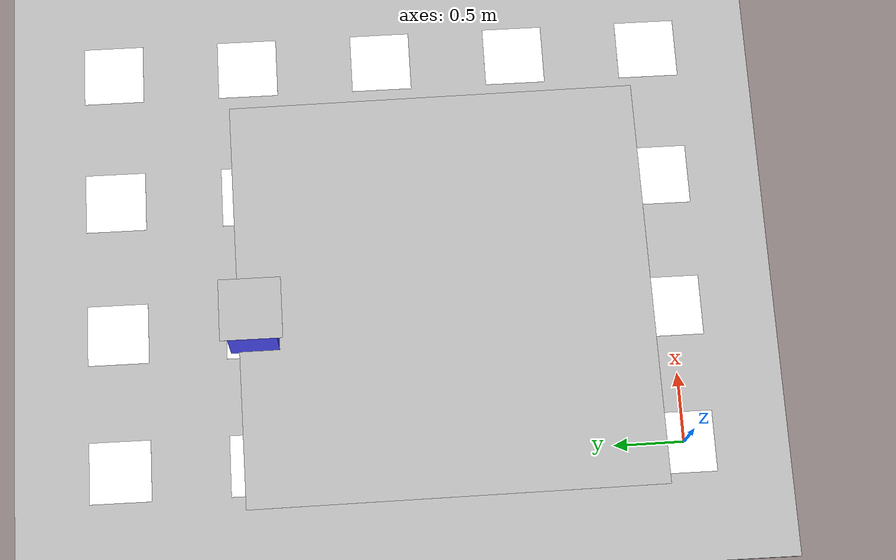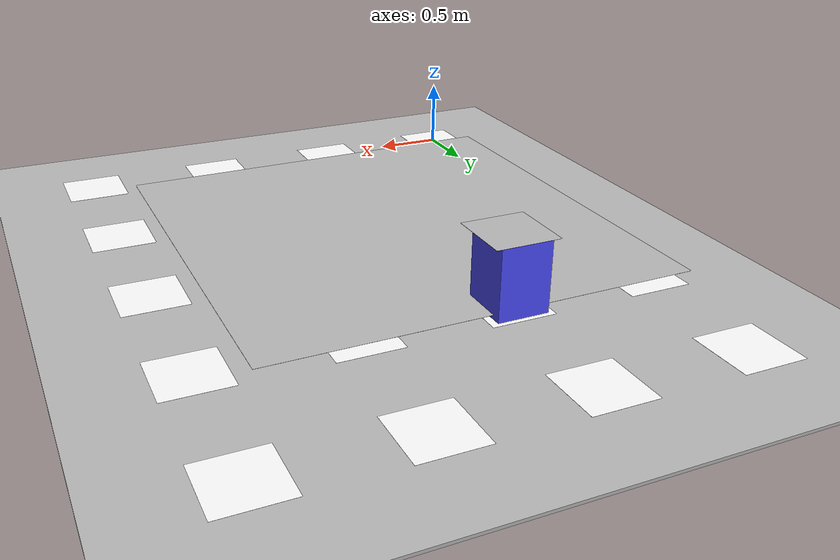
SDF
<sdf version="1.7">
 <world name="default">
  <light name="sun" type="directional">
   <pose>0 0 10 0 -0 0</pose>
   <diffuse>0.8 0.8 0.8 1</diffuse>
   <specular>0.2 0.2 0.2 1</specular>
   <attenuation>
    <range>1000</range>
    <constant>0.9</constant>
    <linear>0.01</linear>
    <quadratic>0.001</quadratic>
   </attenuation>
   <direction>-0.5 0.1 -0.9</direction>
   <spot><inner_angle>0</inner_angle><outer_angle>0</outer_angle><falloff>0</falloff></spot>
  </light>
  <model name="parquet_plane">
   <static>1</static>
   <link name="link">
    <collision name="collision"><geometry><box><size>200 200 0.02</size></box></geometry></collision>
    <visual name="visual">
     <cast_shadows>0</cast_shadows>
     <geometry><box><size>200 200 0.02</size></box></geometry>
     <material>
      <script>
       <uri>model://parquet_plane/materials/scripts</uri>
       <uri>model://parquet_plane/materials/textures</uri>
       <name>parquet</name>
      </script>
     </material>
    </visual>
   </link>
   <pose>-0.15548 -1.47242 -0.01 0 -0 0</pose>
  </model>
  <scene>
   <ambient>0.8 0.8 0.8 1</ambient>
   <background>0.8 0.9 1 1</background>
   <shadows>0</shadows>
   <grid>0</grid>
   <origin_visual>0</origin_visual>
  </scene>
  <physics name="default_physics" default="0" type="ode">
   <ode>
    <solver>
     <type>quick</type>
     <iters>10</iters>
     <sor>1.3</sor>
     <use_dynamic_moi_rescaling>0</use_dynamic_moi_rescaling>
    </solver>
    <constraints>
     <cfm>0</cfm>
     <erp>0.2</erp>
     <contact_max_correcting_vel>100</contact_max_correcting_vel>
     <contact_surface_layer>0.001</contact_surface_layer>
    </constraints>
   </ode>
   <max_step_size>0.004</max_step_size>
   <real_time_factor>1</real_time_factor>
   <real_time_update_rate>250</real_time_update_rate>
  </physics>
  <gravity>0 0 -9.8066</gravity>
  <magnetic_field>6e-06 2.3e-05 -4.2e-05</magnetic_field>
  <atmosphere type="adiabatic"/>
  <spherical_coordinates>
   <surface_model>EARTH_WGS84</surface_model>
   <latitude_deg>0</latitude_deg>
   <longitude_deg>0</longitude_deg>
   <elevation>0</elevation>
   <heading_deg>0</heading_deg>
  </spherical_coordinates>
  <model name="aruco_2_20">
   <link name="aruco_2_20_link">
    <inertial>
     <mass>1</mass>
     <inertia><ixx>1</ixx><ixy>0</ixy><ixz>0</ixz><iyy>1</iyy><iyz>0</iyz><izz>1</izz></inertia>
    </inertial>
    <visual name="visual_marker_2_0">
     <pose>0 0 0 0 -0 1.5708</pose>
     <cast_shadows>0</cast_shadows>
     <geometry><box><size>0.44 0.44 0.001</size></box></geometry>
     <material>
      <script>
       <uri>model://aruco_nto2021_txt/materials/scripts</uri>
       <uri>model://aruco_nto2021_txt/materials/textures</uri>
       <name>aruco/marker_2_0</name>
      </script>
      <shader type="pixel"><normal_map>__default__</normal_map></shader>
      <ambient>1 1 1 1</ambient>
      <diffuse>1 1 1 1</diffuse>
      <specular>0 0 0 1</specular>
      <emissive>0 0 0 1</emissive>
     </material>
    </visual>
    <visual name="visual_marker_2_1">
     <pose>1 0 0 0 -0 1.5708</pose>
     <cast_shadows>0</cast_shadows>
     <geometry><box><size>0.44 0.44 0.001</size></box></geometry>
     <material>
      <script>
       <uri>model://aruco_nto2021_txt/materials/scripts</uri>
       <uri>model://aruco_nto2021_txt/materials/textures</uri>
       <name>aruco/marker_2_1</name>
      </script>
      <shader type="pixel"><normal_map>__default__</normal_map></shader>
      <ambient>1 1 1 1</ambient>
      <diffuse>1 1 1 1</diffuse>
      <specular>0 0 0 1</specular>
      <emissive>0 0 0 1</emissive>
     </material>
    </visual>
    <visual name="visual_marker_2_2">
     <pose>2 0 0 0 -0 1.5708</pose>
     <cast_shadows>0</cast_shadows>
     <geometry><box><size>0.44 0.44 0.001</size></box></geometry>
     <material>
      <script>
       <uri>model://aruco_nto2021_txt/materials/scripts</uri>
       <uri>model://aruco_nto2021_txt/materials/textures</uri>
       <name>aruco/marker_2_2</name>
      </script>
      <shader type="pixel"><normal_map>__default__</normal_map></shader>
      <ambient>1 1 1 1</ambient>
      <diffuse>1 1 1 1</diffuse>
      <specular>0 0 0 1</specular>
      <emissive>0 0 0 1</emissive>
     </material>
    </visual>
    <visual name="visual_marker_2_3">
     <pose>3 0 0 0 -0 1.5708</pose>
     <cast_shadows>0</cast_shadows>
     <geometry><box><size>0.44 0.44 0.001</size></box></geometry>
     <material>
      <script>
       <uri>model://aruco_nto2021_txt/materials/scripts</uri>
       <uri>model://aruco_nto2021_txt/materials/textures</uri>
       <name>aruco/marker_2_3</name>
      </script>
      <shader type="pixel"><normal_map>__default__</normal_map></shader>
      <ambient>1 1 1 1</ambient>
      <diffuse>1 1 1 1</diffuse>
      <specular>0 0 0 1</specular>
      <emissive>0 0 0 1</emissive>
     </material>
    </visual>
    <visual name="visual_marker_2_4">
     <pose>0 1 0 0 -0 1.5708</pose>
     <cast_shadows>0</cast_shadows>
     <geometry><box><size>0.44 0.44 0.001</size></box></geometry>
     <material>
      <script>
       <uri>model://aruco_nto2021_txt/materials/scripts</uri>
       <uri>model://aruco_nto2021_txt/materials/textures</uri>
       <name>aruco/marker_2_4</name>
      </script>
      <shader type="pixel"><normal_map>__default__</normal_map></shader>
      <ambient>1 1 1 1</ambient>
      <diffuse>1 1 1 1</diffuse>
      <specular>0 0 0 1</specular>
      <emissive>0 0 0 1</emissive>
     </material>
    </visual>
    <visual name="visual_marker_2_5">
     <pose>1 1 0 0 -0 1.5708</pose>
     <cast_shadows>0</cast_shadows>
     <geometry><box><size>0.44 0.44 0.001</size></box></geometry>
     <material>
      <script>
       <uri>model://aruco_nto2021_txt/materials/scripts</uri>
       <uri>model://aruco_nto2021_txt/materials/textures</uri>
       <name>aruco/marker_2_5</name>
      </script>
      <shader type="pixel"><normal_map>__default__</normal_map></shader>
      <ambient>1 1 1 1</ambient>
      <diffuse>1 1 1 1</diffuse>
      <specular>0 0 0 1</specular>
      <emissive>0 0 0 1</emissive>
     </material>
    </visual>
    <visual name="visual_marker_2_6">
     <pose>2 1 0 0 -0 1.5708</pose>
     <cast_shadows>0</cast_shadows>
     <geometry><box><size>0.44 0.44 0.001</size></box></geometry>
     <material>
      <script>
       <uri>model://aruco_nto2021_txt/materials/scripts</uri>
       <uri>model://aruco_nto2021_txt/materials/textures</uri>
       <name>aruco/marker_2_6</name>
      </script>
      <shader type="pixel"><normal_map>__default__</normal_map></shader>
      <ambient>1 1 1 1</ambient>
      <diffuse>1 1 1 1</diffuse>
      <specular>0 0 0 1</specular>
      <emissive>0 0 0 1</emissive>
     </material>
    </visual>
    <visual name="visual_marker_2_7">
     <pose>3 1 0 0 -0 1.5708</pose>
     <cast_shadows>0</cast_shadows>
     <geometry><box><size>0.44 0.44 0.001</size></box></geometry>
     <material>
      <script>
       <uri>model://aruco_nto2021_txt/materials/scripts</uri>
       <uri>model://aruco_nto2021_txt/materials/textures</uri>
       <name>aruco/marker_2_7</name>
      </script>
      <shader type="pixel"><normal_map>__default__</normal_map></shader>
      <ambient>1 1 1 1</ambient>
      <diffuse>1 1 1 1</diffuse>
      <specular>0 0 0 1</specular>
      <emissive>0 0 0 1</emissive>
     </material>
    </visual>
    <visual name="visual_marker_2_8">
     <pose>0 2 0 0 -0 1.5708</pose>
     <cast_shadows>0</cast_shadows>
     <geometry><box><size>0.44 0.44 0.001</size></box></geometry>
     <material>
      <script>
       <uri>model://aruco_nto2021_txt/materials/scripts</uri>
       <uri>model://aruco_nto2021_txt/materials/textures</uri>
       <name>aruco/marker_2_8</name>
      </script>
      <shader type="pixel"><normal_map>__default__</normal_map></shader>
      <ambient>1 1 1 1</ambient>
      <diffuse>1 1 1 1</diffuse>
      <specular>0 0 0 1</specular>
      <emissive>0 0 0 1</emissive>
     </material>
    </visual>
    <visual name="visual_marker_2_9">
     <pose>1 2 0 0 -0 1.5708</pose>
     <cast_shadows>0</cast_shadows>
     <geometry><box><size>0.44 0.44 0.001</size></box></geometry>
     <material>
      <script>
       <uri>model://aruco_nto2021_txt/materials/scripts</uri>
       <uri>model://aruco_nto2021_txt/materials/textures</uri>
       <name>aruco/marker_2_9</name>
      </script>
      <shader type="pixel"><normal_map>__default__</normal_map></shader>
      <ambient>1 1 1 1</ambient>
      <diffuse>1 1 1 1</diffuse>
      <specular>0 0 0 1</specular>
      <emissive>0 0 0 1</emissive>
     </material>
    </visual>
    <visual name="visual_marker_2_10">
     <pose>2 2 0 0 -0 1.5708</pose>
     <cast_shadows>0</cast_shadows>
     <geometry><box><size>0.44 0.44 0.001</size></box></geometry>
     <material>
      <script>
       <uri>model://aruco_nto2021_txt/materials/scripts</uri>
       <uri>model://aruco_nto2021_txt/materials/textures</uri>
       <name>aruco/marker_2_10</name>
      </script>
      <shader type="pixel"><normal_map>__default__</normal_map></shader>
      <ambient>1 1 1 1</ambient>
      <diffuse>1 1 1 1</diffuse>
      <specular>0 0 0 1</specular>
      <emissive>0 0 0 1</emissive>
     </material>
    </visual>
    <visual name="visual_marker_2_11">
     <pose>3 2 0 0 -0 1.5708</pose>
     <cast_shadows>0</cast_shadows>
     <geometry><box><size>0.44 0.44 0.001</size></box></geometry>
     <material>
      <script>
       <uri>model://aruco_nto2021_txt/materials/scripts</uri>
       <uri>model://aruco_nto2021_txt/materials/textures</uri>
       <name>aruco/marker_2_11</name>
      </script>
      <shader type="pixel"><normal_map>__default__</normal_map></shader>
      <ambient>1 1 1 1</ambient>
      <diffuse>1 1 1 1</diffuse>
      <specular>0 0 0 1</specular>
      <emissive>0 0 0 1</emissive>
     </material>
    </visual>
    <visual name="visual_marker_2_12">
     <pose>0 3 0 0 -0 1.5708</pose>
     <cast_shadows>0</cast_shadows>
     <geometry><box><size>0.44 0.44 0.001</size></box></geometry>
     <material>
      <script>
       <uri>model://aruco_nto2021_txt/materials/scripts</uri>
       <uri>model://aruco_nto2021_txt/materials/textures</uri>
       <name>aruco/marker_2_12</name>
      </script>
      <shader type="pixel"><normal_map>__default__</normal_map></shader>
      <ambient>1 1 1 1</ambient>
      <diffuse>1 1 1 1</diffuse>
      <specular>0 0 0 1</specular>
      <emissive>0 0 0 1</emissive>
     </material>
    </visual>
    <visual name="visual_marker_2_13">
     <pose>1 3 0 0 -0 1.5708</pose>
     <cast_shadows>0</cast_shadows>
     <geometry><box><size>0.44 0.44 0.001</size></box></geometry>
     <material>
      <script>
       <uri>model://aruco_nto2021_txt/materials/scripts</uri>
       <uri>model://aruco_nto2021_txt/materials/textures</uri>
       <name>aruco/marker_2_13</name>
      </script>
      <shader type="pixel"><normal_map>__default__</normal_map></shader>
      <ambient>1 1 1 1</ambient>
      <diffuse>1 1 1 1</diffuse>
      <specular>0 0 0 1</specular>
      <emissive>0 0 0 1</emissive>
     </material>
    </visual>
    <visual name="visual_marker_2_14">
     <pose>2 3 0 0 -0 1.5708</pose>
     <cast_shadows>0</cast_shadows>
     <geometry><box><size>0.44 0.44 0.001</size></box></geometry>
     <material>
      <script>
       <uri>model://aruco_nto2021_txt/materials/scripts</uri>
       <uri>model://aruco_nto2021_txt/materials/textures</uri>
       <name>aruco/marker_2_14</name>
      </script>
      <shader type="pixel"><normal_map>__default__</normal_map></shader>
      <ambient>1 1 1 1</ambient>
      <diffuse>1 1 1 1</diffuse>
      <specular>0 0 0 1</specular>
      <emissive>0 0 0 1</emissive>
     </material>
    </visual>
    <visual name="visual_marker_2_15">
     <pose>3 3 0 0 -0 1.5708</pose>
     <cast_shadows>0</cast_shadows>
     <geometry><box><size>0.44 0.44 0.001</size></box></geometry>
     <material>
      <script>
       <uri>model://aruco_nto2021_txt/materials/scripts</uri>
       <uri>model://aruco_nto2021_txt/materials/textures</uri>
       <name>aruco/marker_2_15</name>
      </script>
      <shader type="pixel"><normal_map>__default__</normal_map></shader>
      <ambient>1 1 1 1</ambient>
      <diffuse>1 1 1 1</diffuse>
      <specular>0 0 0 1</specular>
      <emissive>0 0 0 1</emissive>
     </material>
    </visual>
    <visual name="visual_marker_2_16">
     <pose>0 4 0 0 -0 1.5708</pose>
     <cast_shadows>0</cast_shadows>
     <geometry><box><size>0.44 0.44 0.001</size></box></geometry>
     <material>
      <script>
       <uri>model://aruco_nto2021_txt/materials/scripts</uri>
       <uri>model://aruco_nto2021_txt/materials/textures</uri>
       <name>aruco/marker_2_16</name>
      </script>
      <shader type="pixel"><normal_map>__default__</normal_map></shader>
      <ambient>1 1 1 1</ambient>
      <diffuse>1 1 1 1</diffuse>
      <specular>0 0 0 1</specular>
      <emissive>0 0 0 1</emissive>
     </material>
    </visual>
    <visual name="visual_marker_2_17">
     <pose>1 4 0 0 -0 1.5708</pose>
     <cast_shadows>0</cast_shadows>
     <geometry><box><size>0.44 0.44 0.001</size></box></geometry>
     <material>
      <script>
       <uri>model://aruco_nto2021_txt/materials/scripts</uri>
       <uri>model://aruco_nto2021_txt/materials/textures</uri>
       <name>aruco/marker_2_17</name>
      </script>
      <shader type="pixel"><normal_map>__default__</normal_map></shader>
      <ambient>1 1 1 1</ambient>
      <diffuse>1 1 1 1</diffuse>
      <specular>0 0 0 1</specular>
      <emissive>0 0 0 1</emissive>
     </material>
    </visual>
    <visual name="visual_marker_2_18">
     <pose>2 4 0 0 -0 1.5708</pose>
     <cast_shadows>0</cast_shadows>
     <geometry><box><size>0.44 0.44 0.001</size></box></geometry>
     <material>
      <script>
       <uri>model://aruco_nto2021_txt/materials/scripts</uri>
       <uri>model://aruco_nto2021_txt/materials/textures</uri>
       <name>aruco/marker_2_18</name>
      </script>
      <shader type="pixel"><normal_map>__default__</normal_map></shader>
      <ambient>1 1 1 1</ambient>
      <diffuse>1 1 1 1</diffuse>
      <specular>0 0 0 1</specular>
      <emissive>0 0 0 1</emissive>
     </material>
    </visual>
    <visual name="visual_marker_2_19">
     <pose>3 4 0 0 -0 1.5708</pose>
     <cast_shadows>0</cast_shadows>
     <geometry><box><size>0.44 0.44 0.001</size></box></geometry>
     <material>
      <script>
       <uri>model://aruco_nto2021_txt/materials/scripts</uri>
       <uri>model://aruco_nto2021_txt/materials/textures</uri>
       <name>aruco/marker_2_19</name>
      </script>
      <shader type="pixel"><normal_map>__default__</normal_map></shader>
      <ambient>1 1 1 1</ambient>
      <diffuse>1 1 1 1</diffuse>
      <specular>0 0 0 1</specular>
      <emissive>0 0 0 1</emissive>
     </material>
    </visual>
   </link>
   <static>1</static>
  </model>
  <model name="Qrcode">
   <static>1</static>
   <link name="aruco_2_20_link">
    <visual name="Qrcode">
     <pose>0 0 0 0 -0 1.5708</pose>
     <cast_shadows>0</cast_shadows>
     <geometry><box><size>0.44 0.44 0.001</size></box></geometry>
     <material>
      <script>
       <uri>model://Mastov/materials/scripts</uri>
       <uri>model://Mastov/materials/textures</uri>
       <name>aruco/qr</name>
      </script>
     </material>
    </visual>
   </link>
   <pose>1.01241 3.01185 0.508088 0 -0 0</pose>
  </model>
  <model name="line">
   <static>1</static>
   <link name="linews">
    <visual name="line">
     <pose>0 0 0 0 -0 1.5708</pose>
     <cast_shadows>0</cast_shadows>
     <geometry><box><size>3 3 0.001</size></box></geometry>
     <material>
      <script>
       <uri>model://pole/materials/scripts</uri>
       <uri>model://pole/materials/textures</uri>
       <name>arseniy/line</name>
      </script>
     </material>
    </visual>
   </link>
   <pose>1.19244 1.63087 0.029519 0 -0 1.57933</pose>
  </model>
  <model name="unit_box">
   <link name="link">
    <inertial>
     <mass>1</mass>
     <inertia>
      <ixx>0.166667</ixx>
      <ixy>0</ixy>
      <ixz>0</ixz>
      <iyy>0.166667</iyy>
      <iyz>0</iyz>
      <izz>0.166667</izz>
     </inertia>
    </inertial>
    <visual name="visual">
     <geometry><box><size>0.35 0.35 0.5</size></box></geometry>
     <material>
      <script><name>Gazebo/Grey</name><uri>file://media/materials/scripts/gazebo.material</uri></script>
      <shader type="pixel"><normal_map>__default__</normal_map></shader>
      <ambient>0.3 0.3 1 1</ambient>
      <diffuse>0.7 0.7 0.7 1</diffuse>
      <specular>0.01 0.01 0.01 1</specular>
      <emissive>0 0 0 1</emissive>
     </material>
    </visual>
    <collision name="collision">
     <geometry><box><size>0.35 0.35 0.5</size></box></geometry>
     <surface>
      <friction>
       <ode><mu>1</mu><mu2>1</mu2><fdir1>0 0 0</fdir1><slip1>0</slip1><slip2>0</slip2></ode>
       <torsional>
        <coefficient>1</coefficient>
        <patch_radius>0</patch_radius>
        <surface_radius>0</surface_radius>
        <use_patch_radius>1</use_patch_radius>
        <ode><slip>0</slip></ode>
       </torsional>
      </friction>
      <bounce><restitution_coefficient>0</restitution_coefficient><threshold>1e+06</threshold></bounce>
      <contact>
       <collide_without_contact>0</collide_without_contact>
       <collide_without_contact_bitmask>1</collide_without_contact_bitmask>
       <collide_bitmask>1</collide_bitmask>
       <ode>
        <soft_cfm>0</soft_cfm>
        <soft_erp>0.2</soft_erp>
        <kp>1e+13</kp>
        <kd>1</kd>
        <max_vel>0.01</max_vel>
        <min_depth>0</min_depth>
       </ode>
       <bullet>
        <split_impulse>1</split_impulse>
        <split_impulse_penetration_threshold>-0.01</split_impulse_penetration_threshold>
        <soft_cfm>0</soft_cfm>
        <soft_erp>0.2</soft_erp>
        <kp>1e+13</kp>
        <kd>1</kd>
       </bullet>
      </contact>
     </surface>
    </collision>
   </link>
   <static>0</static>
   <pose>0.994704 3.01295 0.249965 0.000107 9e-05 0.003804</pose>
  </model>
 </world>
</sdf>
